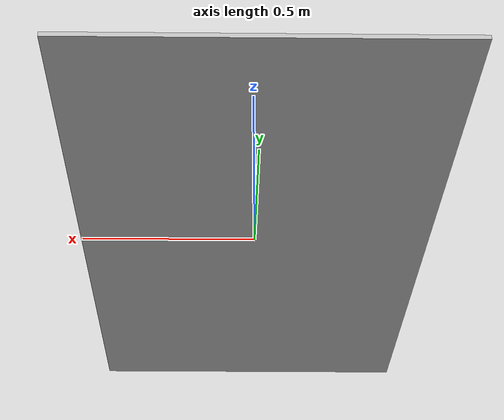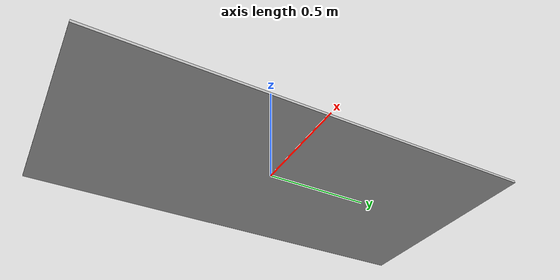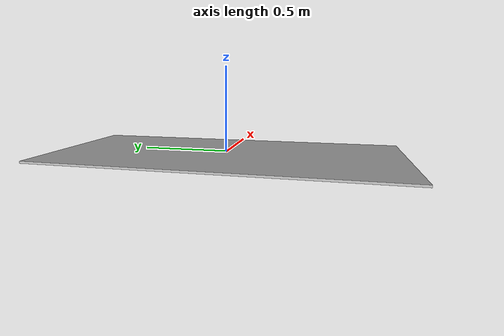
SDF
<?xml version="1.0" ?>
<sdf version="1.4">
  <model name="bimanual_secondary_table">
    <static>true</static>
    <link name="link">
      <inertial>
        <mass>20</mass>
      </inertial>
      <collision name="collision">
        <pose>0.0 0.0 0.0 0 0.0 0.0</pose>
        <geometry>
          <mesh>
            <uri>model://bimanual_secondary_table/meshes/bimanual_secondary_table.stl</uri>
          </mesh>
        </geometry>
      </collision>
      <visual name="visual">
        <pose>0.0 0.0 0.0 0 0.0 0.0</pose>
        <geometry>
          <mesh>
            <uri>model://bimanual_secondary_table/meshes/bimanual_secondary_table.stl</uri>
          </mesh>
        </geometry>
      </visual>
    </link>
  </model>
</sdf>
